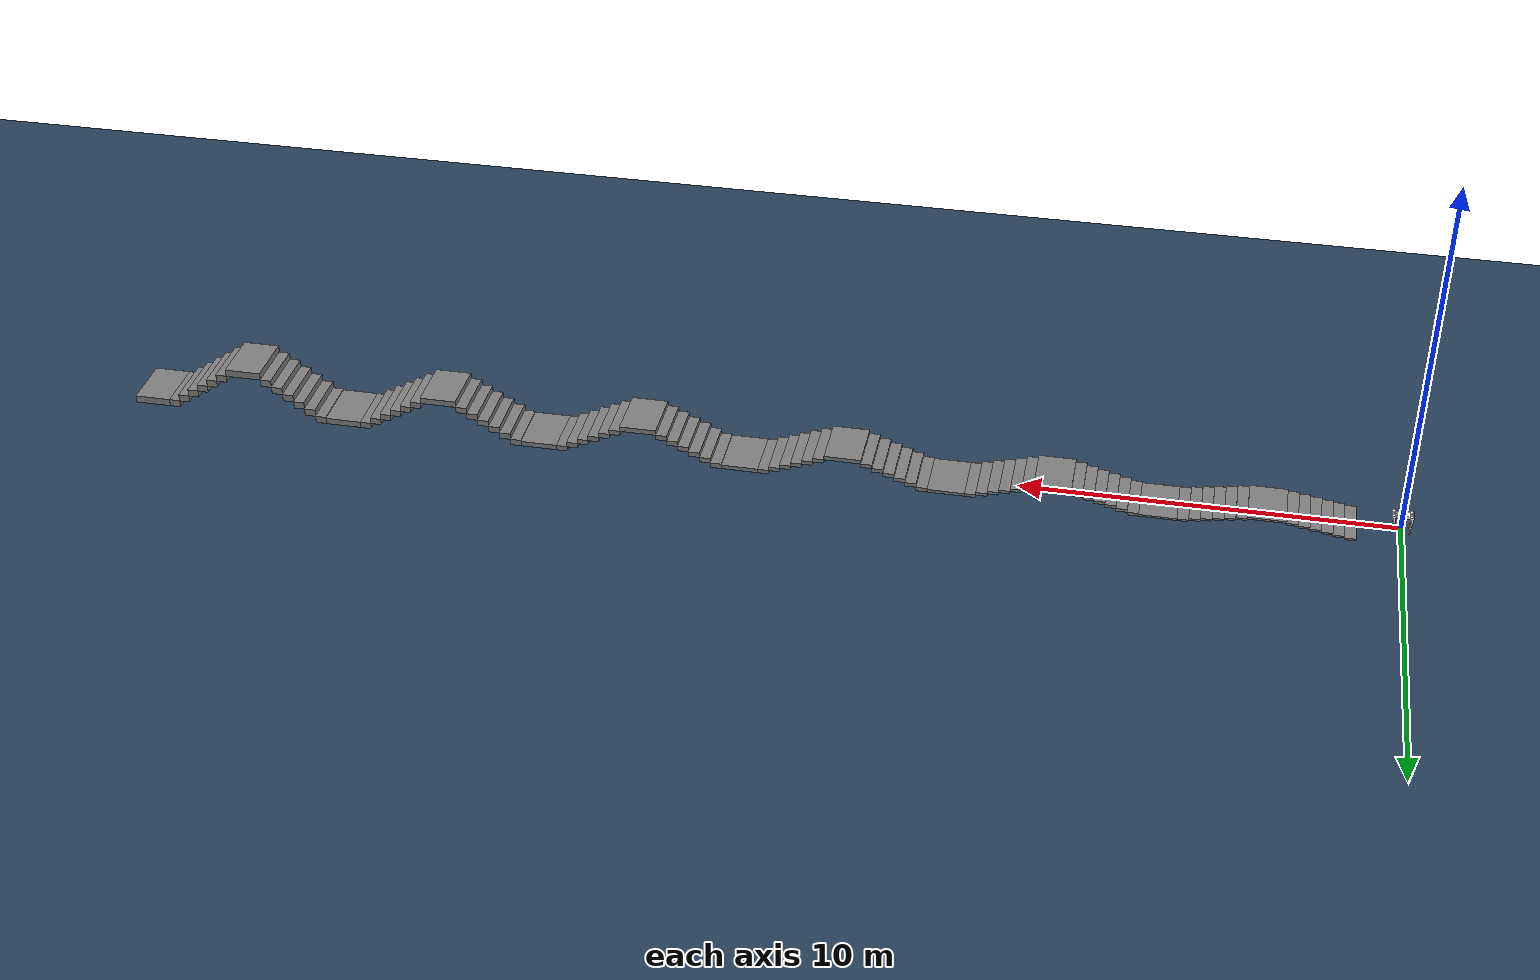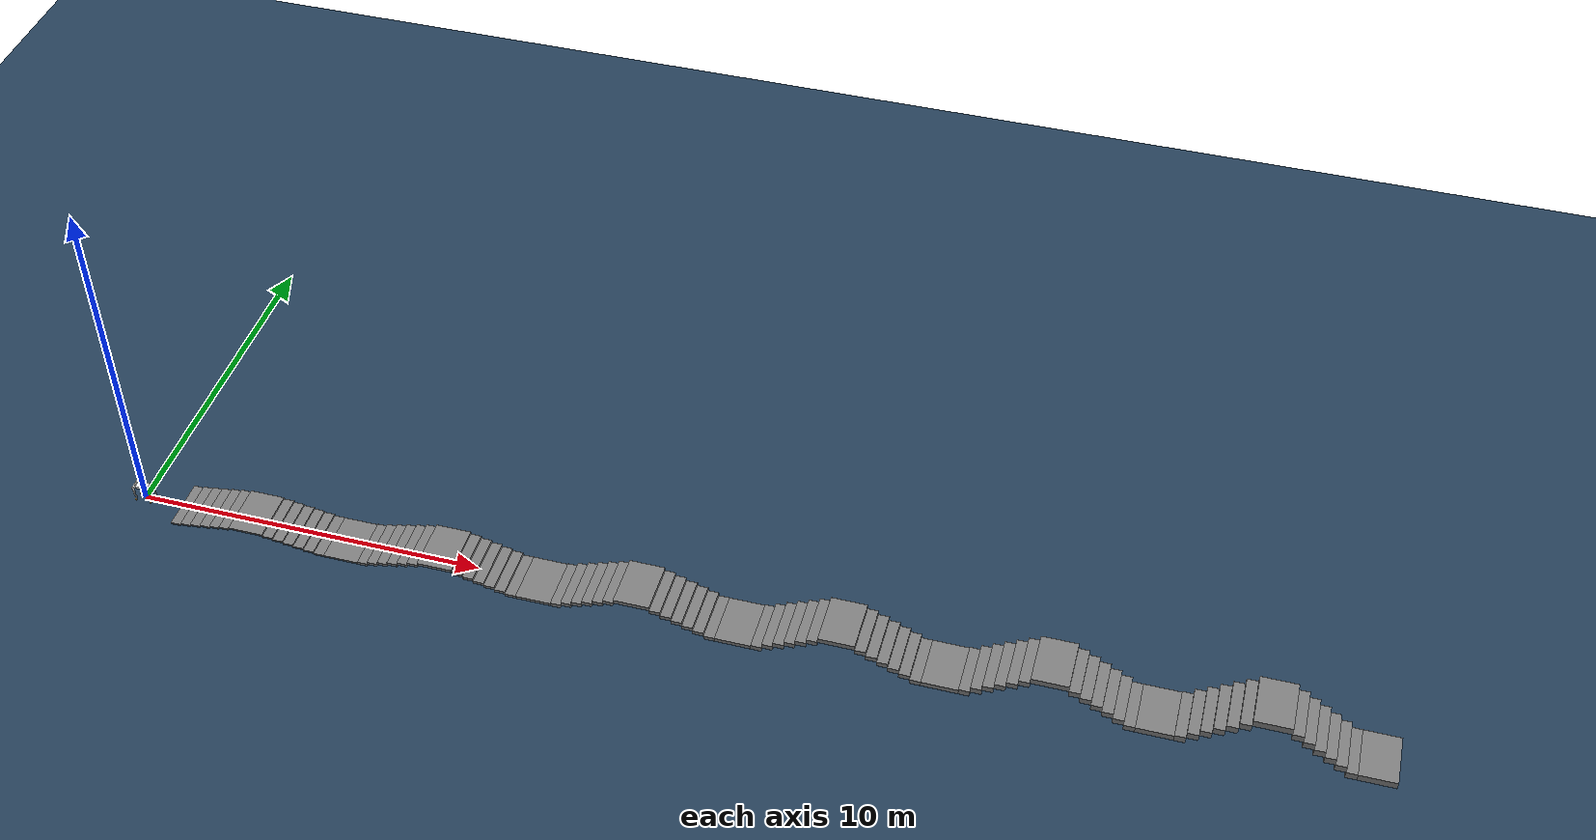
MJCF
<mujoco model="qxhzz scene">
  <include file="qianxihouzhouzu.xml"/>

  <statistic center="0 0 0.1" extent="0.8" />

  <default>
    <geom friction="2.0 0.05 0.001" />
  </default>
  <visual>
    <headlight diffuse="0.6 0.6 0.6" ambient="0.3 0.3 0.3" specular="0 0 0" />
    <rgba haze="0.15 0.25 0.35 1" />
    <global azimuth="-130" elevation="-20" />
  </visual>

  <asset>
    <texture type="skybox" builtin="gradient" rgb1="0.3 0.5 0.7" rgb2="0 0 0" width="512" height="3072" />
    <texture type="2d" name="groundplane" builtin="checker" mark="edge" rgb1="0.2 0.3 0.4" rgb2="0.1 0.2 0.3" markrgb="0.8 0.8 0.8" width="300" height="300" />
    <material name="groundplane" texture="groundplane" texuniform="true" texrepeat="5 5" reflectance="0.2" />
  </asset>

  <worldbody>
    <light pos="0 0 1.5" dir="0 0 -1" directional="true" />
    <geom name="floor" size="0 0 0.05" type="plane" material="groundplane" />

    <geom pos="1.3 0.0 0.025" type="box" size="0.15 0.75 0.025" quat="1.0 0.0 0.0 0.0" />
    <geom pos="1.6 0.0 0.07500000000000001" type="box" size="0.15 0.75 0.025" quat="1.0 0.0 0.0 0.0" />
    <geom pos="1.9 0.0 0.125" type="box" size="0.15 0.75 0.025" quat="1.0 0.0 0.0 0.0" />
    <geom pos="2.2 0.0 0.17500000000000002" type="box" size="0.15 0.75 0.025" quat="1.0 0.0 0.0 0.0" />
    <geom pos="2.5 0.0 0.225" type="box" size="0.15 0.75 0.025" quat="1.0 0.0 0.0 0.0" />
    <geom pos="2.8 0.0 0.275" type="box" size="0.15 0.75 0.025" quat="1.0 0.0 0.0 0.0" />
    <geom pos="3.4499999999999997 0.0 0.32500000000000007" type="box" size="0.5 0.75 0.025" quat="1.0 0.0 0.0 0.0" />
    <geom pos="4.1 0.0 0.275" type="box" size="0.15 0.75 0.025" quat="1.0 0.0 0.0 0.0" />
    <geom pos="4.3999999999999995 0.0 0.22500000000000003" type="box" size="0.15 0.75 0.025" quat="1.0 0.0 0.0 0.0" />
    <geom pos="4.699999999999999 0.0 0.17500000000000002" type="box" size="0.15 0.75 0.025" quat="1.0 0.0 0.0 0.0" />
    <geom pos="5.0 0.0 0.125" type="box" size="0.15 0.75 0.025" quat="1.0 0.0 0.0 0.0" />
    <geom pos="5.3 0.0 0.07500000000000001" type="box" size="0.15 0.75 0.025" quat="1.0 0.0 0.0 0.0" />
    <geom pos="5.6 0.0 0.025000000000000022" type="box" size="0.15 0.75 0.025" quat="1.0 0.0 0.0 0.0" />
    <geom pos="6.25 0.0 0.025" type="box" size="0.5 0.75 0.025" quat="1.0 0.0 0.0 0.0" />
    <geom pos="6.898999999999999 0.0 0.04" type="box" size="0.15 0.75 0.04" quat="1.0 0.0 0.0 0.0" />
    <geom pos="7.198999999999999 0.0 0.12" type="box" size="0.15 0.75 0.04" quat="1.0 0.0 0.0 0.0" />
    <geom pos="7.498999999999999 0.0 0.2" type="box" size="0.15 0.75 0.04" quat="1.0 0.0 0.0 0.0" />
    <geom pos="7.7989999999999995 0.0 0.28" type="box" size="0.15 0.75 0.04" quat="1.0 0.0 0.0 0.0" />
    <geom pos="8.099 0.0 0.36" type="box" size="0.15 0.75 0.04" quat="1.0 0.0 0.0 0.0" />
    <geom pos="8.399 0.0 0.44" type="box" size="0.15 0.75 0.04" quat="1.0 0.0 0.0 0.0" />
    <geom pos="9.049 0.0 0.52" type="box" size="0.5 0.75 0.04" quat="1.0 0.0 0.0 0.0" />
    <geom pos="9.698999999999998 0.0 0.44" type="box" size="0.15 0.75 0.04" quat="1.0 0.0 0.0 0.0" />
    <geom pos="9.998999999999999 0.0 0.36" type="box" size="0.15 0.75 0.04" quat="1.0 0.0 0.0 0.0" />
    <geom pos="10.299 0.0 0.28" type="box" size="0.15 0.75 0.04" quat="1.0 0.0 0.0 0.0" />
    <geom pos="10.598999999999998 0.0 0.2" type="box" size="0.15 0.75 0.04" quat="1.0 0.0 0.0 0.0" />
    <geom pos="10.899 0.0 0.12" type="box" size="0.15 0.75 0.04" quat="1.0 0.0 0.0 0.0" />
    <geom pos="11.198999999999998 0.0 0.03999999999999998" type="box" size="0.15 0.75 0.04" quat="1.0 0.0 0.0 0.0" />
    <geom pos="11.849 0.0 0.04" type="box" size="0.5 0.75 0.04" quat="1.0 0.0 0.0 0.0" />
    <geom pos="12.498 0.0 0.055" type="box" size="0.15 0.75 0.055" quat="1.0 0.0 0.0 0.0" />
    <geom pos="12.797999999999998 0.0 0.165" type="box" size="0.15 0.75 0.055" quat="1.0 0.0 0.0 0.0" />
    <geom pos="13.097999999999999 0.0 0.275" type="box" size="0.15 0.75 0.055" quat="1.0 0.0 0.0 0.0" />
    <geom pos="13.397999999999998 0.0 0.385" type="box" size="0.15 0.75 0.055" quat="1.0 0.0 0.0 0.0" />
    <geom pos="13.697999999999999 0.0 0.495" type="box" size="0.15 0.75 0.055" quat="1.0 0.0 0.0 0.0" />
    <geom pos="13.997999999999998 0.0 0.605" type="box" size="0.15 0.75 0.055" quat="1.0 0.0 0.0 0.0" />
    <geom pos="14.647999999999998 0.0 0.7150000000000001" type="box" size="0.5 0.75 0.055" quat="1.0 0.0 0.0 0.0" />
    <geom pos="15.297999999999998 0.0 0.605" type="box" size="0.15 0.75 0.055" quat="1.0 0.0 0.0 0.0" />
    <geom pos="15.597999999999999 0.0 0.495" type="box" size="0.15 0.75 0.055" quat="1.0 0.0 0.0 0.0" />
    <geom pos="15.897999999999998 0.0 0.385" type="box" size="0.15 0.75 0.055" quat="1.0 0.0 0.0 0.0" />
    <geom pos="16.197999999999997 0.0 0.27499999999999997" type="box" size="0.15 0.75 0.055" quat="1.0 0.0 0.0 0.0" />
    <geom pos="16.497999999999998 0.0 0.16499999999999998" type="box" size="0.15 0.75 0.055" quat="1.0 0.0 0.0 0.0" />
    <geom pos="16.798 0.0 0.05499999999999994" type="box" size="0.15 0.75 0.055" quat="1.0 0.0 0.0 0.0" />
    <geom pos="17.448 0.0 0.055" type="box" size="0.5 0.75 0.055" quat="1.0 0.0 0.0 0.0" />
    <geom pos="18.096999999999998 0.0 0.07" type="box" size="0.15 0.75 0.07" quat="1.0 0.0 0.0 0.0" />
    <geom pos="18.397 0.0 0.21000000000000002" type="box" size="0.15 0.75 0.07" quat="1.0 0.0 0.0 0.0" />
    <geom pos="18.696999999999996 0.0 0.35000000000000003" type="box" size="0.15 0.75 0.07" quat="1.0 0.0 0.0 0.0" />
    <geom pos="18.996999999999996 0.0 0.49000000000000005" type="box" size="0.15 0.75 0.07" quat="1.0 0.0 0.0 0.0" />
    <geom pos="19.296999999999997 0.0 0.6300000000000001" type="box" size="0.15 0.75 0.07" quat="1.0 0.0 0.0 0.0" />
    <geom pos="19.596999999999998 0.0 0.77" type="box" size="0.15 0.75 0.07" quat="1.0 0.0 0.0 0.0" />
    <geom pos="20.246999999999996 0.0 0.9100000000000001" type="box" size="0.5 0.75 0.07" quat="1.0 0.0 0.0 0.0" />
    <geom pos="20.897 0.0 0.77" type="box" size="0.15 0.75 0.07" quat="1.0 0.0 0.0 0.0" />
    <geom pos="21.196999999999996 0.0 0.63" type="box" size="0.15 0.75 0.07" quat="1.0 0.0 0.0 0.0" />
    <geom pos="21.496999999999996 0.0 0.49" type="box" size="0.15 0.75 0.07" quat="1.0 0.0 0.0 0.0" />
    <geom pos="21.796999999999997 0.0 0.35" type="box" size="0.15 0.75 0.07" quat="1.0 0.0 0.0 0.0" />
    <geom pos="22.096999999999998 0.0 0.20999999999999996" type="box" size="0.15 0.75 0.07" quat="1.0 0.0 0.0 0.0" />
    <geom pos="22.397 0.0 0.06999999999999995" type="box" size="0.15 0.75 0.07" quat="1.0 0.0 0.0 0.0" />
    <geom pos="23.046999999999997 0.0 0.07" type="box" size="0.5 0.75 0.07" quat="1.0 0.0 0.0 0.0" />
    <geom pos="23.695999999999998 0.0 0.085" type="box" size="0.15 0.75 0.085" quat="1.0 0.0 0.0 0.0" />
    <geom pos="23.996 0.0 0.255" type="box" size="0.15 0.75 0.085" quat="1.0 0.0 0.0 0.0" />
    <geom pos="24.295999999999996 0.0 0.42500000000000004" type="box" size="0.15 0.75 0.085" quat="1.0 0.0 0.0 0.0" />
    <geom pos="24.595999999999997 0.0 0.5950000000000001" type="box" size="0.15 0.75 0.085" quat="1.0 0.0 0.0 0.0" />
    <geom pos="24.895999999999997 0.0 0.765" type="box" size="0.15 0.75 0.085" quat="1.0 0.0 0.0 0.0" />
    <geom pos="25.195999999999998 0.0 0.935" type="box" size="0.15 0.75 0.085" quat="1.0 0.0 0.0 0.0" />
    <geom pos="25.845999999999997 0.0 1.105" type="box" size="0.5 0.75 0.085" quat="1.0 0.0 0.0 0.0" />
    <geom pos="26.495999999999995 0.0 0.935" type="box" size="0.15 0.75 0.085" quat="1.0 0.0 0.0 0.0" />
    <geom pos="26.795999999999996 0.0 0.765" type="box" size="0.15 0.75 0.085" quat="1.0 0.0 0.0 0.0" />
    <geom pos="27.095999999999997 0.0 0.595" type="box" size="0.15 0.75 0.085" quat="1.0 0.0 0.0 0.0" />
    <geom pos="27.395999999999997 0.0 0.42500000000000004" type="box" size="0.15 0.75 0.085" quat="1.0 0.0 0.0 0.0" />
    <geom pos="27.695999999999998 0.0 0.255" type="box" size="0.15 0.75 0.085" quat="1.0 0.0 0.0 0.0" />
    <geom pos="27.995999999999995 0.0 0.08499999999999996" type="box" size="0.15 0.75 0.085" quat="1.0 0.0 0.0 0.0" />
    <geom pos="28.645999999999997 0.0 0.085" type="box" size="0.5 0.75 0.085" quat="1.0 0.0 0.0 0.0" />
    <geom pos="29.294999999999998 0.0 0.1" type="box" size="0.15 0.75 0.1" quat="1.0 0.0 0.0 0.0" />
    <geom pos="29.595 0.0 0.30000000000000004" type="box" size="0.15 0.75 0.1" quat="1.0 0.0 0.0 0.0" />
    <geom pos="29.894999999999996 0.0 0.5" type="box" size="0.15 0.75 0.1" quat="1.0 0.0 0.0 0.0" />
    <geom pos="30.194999999999997 0.0 0.7000000000000001" type="box" size="0.15 0.75 0.1" quat="1.0 0.0 0.0 0.0" />
    <geom pos="30.494999999999997 0.0 0.9" type="box" size="0.15 0.75 0.1" quat="1.0 0.0 0.0 0.0" />
    <geom pos="30.794999999999998 0.0 1.1" type="box" size="0.15 0.75 0.1" quat="1.0 0.0 0.0 0.0" />
    <geom pos="31.444999999999997 0.0 1.3000000000000003" type="box" size="0.5 0.75 0.1" quat="1.0 0.0 0.0 0.0" />
    <geom pos="32.095 0.0 1.1" type="box" size="0.15 0.75 0.1" quat="1.0 0.0 0.0 0.0" />
    <geom pos="32.394999999999996 0.0 0.9000000000000001" type="box" size="0.15 0.75 0.1" quat="1.0 0.0 0.0 0.0" />
    <geom pos="32.695 0.0 0.7000000000000001" type="box" size="0.15 0.75 0.1" quat="1.0 0.0 0.0 0.0" />
    <geom pos="32.995 0.0 0.5" type="box" size="0.15 0.75 0.1" quat="1.0 0.0 0.0 0.0" />
    <geom pos="33.294999999999995 0.0 0.30000000000000004" type="box" size="0.15 0.75 0.1" quat="1.0 0.0 0.0 0.0" />
    <geom pos="33.595 0.0 0.10000000000000009" type="box" size="0.15 0.75 0.1" quat="1.0 0.0 0.0 0.0" />
    <geom pos="34.245 0.0 0.1" type="box" size="0.5 0.75 0.1" quat="1.0 0.0 0.0 0.0" />
  </worldbody>
</mujoco>

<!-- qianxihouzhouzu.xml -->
<mujoco model="QXHZZ_description">

  <!-- 编译器设置，路径直接兼容你之前的URDF对应的网格目录 -->
  <compiler angle="radian" meshdir="../meshes/"/>
  <option gravity="0 0 -9.81"/>

  <!-- 默认属性，参考 Go2 的设定，给予电机转子惯量、阻尼及摩擦 -->
  <default>
    <joint damping="0.02" armature="0.01" frictionloss="0.01"/>

    <!-- 视觉组：不参与物理碰撞 -->
    <default class="visual">
        <geom type="mesh" contype="0" conaffinity="0" group="2"/>
    </default>

    <!-- 碰撞组：利用网格的凸包进行物理碰撞测试 -->
    <!-- 关键修复：加入 contype="1" conaffinity="0" 禁用机器人自碰撞，但保留与地面的碰撞 -->
    <default class="collision">
        <geom type="mesh" group="3" contype="1" conaffinity="0"/>
    </default>
  </default>

  <!-- 导入网格与材质 -->
  <asset>
    <material name="white" rgba="1 1 1 1" />
    <material name="gray" rgba="0.77647 0.75686 0.73725 1" />
    <material name="orange" rgba="1 0.65 0 1" />
    <material name="red" rgba="1 0 0 1" />

    <mesh file="base_link.STL" />
    <mesh file="shenzi.STL" />
    <mesh file="yq1.STL" />
    <mesh file="zh2.STL" />
    <mesh file="zh3.STL" />
    <mesh file="zq1.STL" />
    <mesh file="yh2.STL" />
    <mesh file="yh3.STL" />
    <mesh file="zh1.STL" />
    <mesh file="yh1.STL" />
  </asset>

  <worldbody>
    <!-- 地面与光照 -->
    <light pos="0 0 1.5" dir="0 0 -1" directional="true"/>

    <!-- 躯干，初始高度设为 0.45 避免陷入地面 -->
    <body name="trunk" pos="0 0 0.45">
      <freejoint name="root"/>
      <inertial pos="0 0 0" mass="5.36" fullinertia="0.055862 0.096172757 0.111591548 0 0 0" />

      <!-- IMU 虚拟连杆与质量 -->
      <body name="imu_link" pos="0 0 0">
          <inertial pos="0 0 0" mass="0.001" fullinertia="0.0001 0.0001 0.0001 0 0 0" />
          <geom type="box" size="0.0005 0.0005 0.0005" material="red" class="visual" />
      </body>

      <!-- Base 与 Trunk 身体网格 -->
      <geom mesh="base_link" material="gray" class="visual" />
      <geom mesh="base_link" class="collision" />
      <geom mesh="shenzi" material="white" class="visual" />
      <geom mesh="shenzi" class="collision" />

      <!-- ================= 前左腿 (FL) ================= -->
      <body name="FL_hip" pos="0.22599 0.05 0">
        <inertial pos="-0.040294 -0.0010631 6.4131E-06" mass="0.80054" fullinertia="0.000567387 0.000893106 0.000630935 0.000004141 0 0"/>
        <joint name="FL_hip_joint" pos="0 0 0" axis="1 0 0" range="-1.570796 1.570796" actuatorfrcrange="-48 48"/>
        <geom mesh="yq1" material="white" class="visual" />
        <geom mesh="yq1" class="collision" />

        <body name="FL_thigh" pos="0 0.088241 0">
          <inertial pos="0.0030535 -0.015391 -0.04077" mass="1.22" fullinertia="0.008707219 0.008424086 0.001382252 0 0.000487508 0"/>
          <joint name="FL_thigh_joint" pos="0 0 0" axis="0 1 0" range="-1.570796 3.141593" actuatorfrcrange="-48 48"/>
          <geom mesh="zh2" material="white" class="visual" />
          <geom mesh="zh2" class="collision" />

          <body name="FL_calf" pos="0 0 -0.22023">
            <inertial pos="-0.0088301 -1.0588E-06 -0.12441" mass="0.53021" fullinertia="0.004322324 0.004363782 0.000070443 -0.000000001 -0.000254221 -0.000000004"/>
            <joint name="FL_calf_joint" pos="0 0 0" axis="0 1 0" range="-2.705260 -0.523599" actuatorfrcrange="-48 48"/>
            <geom mesh="zh3" material="white" class="visual" />
            <geom mesh="zh3" class="collision" />

            <!-- 足端 Fixed Joint 省略，直接嵌入子实体 -->
            <body name="FL_foot" pos="0 0 -0.229">
              <inertial pos="0 0 0" mass="0.06" fullinertia="0.0000096 0.0000096 0.0000096 0 0 0"/>
              <geom type="sphere" size="0.03" material="orange" class="visual" />
              <!-- 脚尖我们默认赋予与地面碰撞能力 -->
              <geom type="sphere" size="0.03" condim="4" friction="3 0.2 0.2" solref="0.02 1"/>
            </body>
          </body>
        </body>
      </body>

      <!-- ================= 前右腿 (FR) ================= -->
      <body name="FR_hip" pos="0.22599 -0.05 0">
        <inertial pos="-0.040294 0.0010631 6.4131E-06" mass="0.80054" fullinertia="0.000567387 0.000893106 0.000630935 0.000004141 0 0"/>
        <joint name="FR_hip_joint" pos="0 0 0" axis="1 0 0" range="-1.570796 1.570796" actuatorfrcrange="-48 48"/>
        <geom mesh="zq1" material="white" class="visual" />
        <geom mesh="zq1" class="collision" />

        <body name="FR_thigh" pos="0 -0.088241 0">
          <inertial pos="0.0030535 0.015391 -0.04077" mass="1.22" fullinertia="0.008707219 0.008424086 0.001382252 0 0.000487508 0"/>
          <joint name="FR_thigh_joint" pos="0 0 0" axis="0 1 0" range="-1.570796 3.141593" actuatorfrcrange="-48 48"/>
          <geom mesh="yh2" material="white" class="visual" />
          <geom mesh="yh2" class="collision" />

          <body name="FR_calf" pos="0 0 -0.22023">
            <inertial pos="-0.0088301 1.0703E-06 -0.12441" mass="0.53021" fullinertia="0.004322324 0.004363782 0.000070443 -0.000000001 -0.000254221 -0.000000004"/>
            <joint name="FR_calf_joint" pos="0 0 0" axis="0 1 0" range="-2.705260 -0.523599" actuatorfrcrange="-48 48"/>
            <geom mesh="yh3" material="white" class="visual" />
            <geom mesh="yh3" class="collision" />

            <body name="FR_foot" pos="0 0 -0.229">
              <inertial pos="0 0 0" mass="0.06" fullinertia="0.0000096 0.0000096 0.0000096 0 0 0"/>
              <geom type="sphere" size="0.03" material="orange" class="visual" />
              <geom type="sphere" size="0.03" condim="4" friction="3 0.2 0.2" solref="0.02 1"/>
            </body>
          </body>
        </body>
      </body>

      <!-- ================= 后左腿 (RL) ================= -->
      <body name="RL_hip" pos="-0.22599 0.05 0">
        <inertial pos="0.040294 -0.0010631 6.4131E-06" mass="0.80054" fullinertia="0.000567387 0.000893106 0.000630935 0.000004141 0 0"/>
        <joint name="RL_hip_joint" pos="0 0 0" axis="1 0 0" range="-1.570796 1.570796" actuatorfrcrange="-48 48"/>
        <geom mesh="zh1" material="white" class="visual" />
        <geom mesh="zh1" class="collision" />

        <body name="RL_thigh" pos="0 0.088241 0">
          <inertial pos="-0.0030535 -0.015391 -0.04077" mass="1.22" fullinertia="0.008707219 0.008424086 0.001382252 0 0.000487508 0"/>
          <joint name="RL_thigh_joint" pos="0 0 0" axis="0 1 0" range="-1.570796 3.141593" actuatorfrcrange="-48 48"/>
          <geom mesh="zh2" material="white" class="visual" />
          <geom mesh="zh2" class="collision" />

          <body name="RL_calf" pos="0 0 -0.22023">
            <inertial pos="0.0088301 -1.0703E-06 -0.12441" mass="0.53021" fullinertia="0.004322324 0.004363782 0.000070443 -0.000000001 -0.000254221 -0.000000004"/>
            <joint name="RL_calf_joint" pos="0 0 0" axis="0 1 0" range="-2.705260 -0.523599" actuatorfrcrange="-48 48"/>
            <geom mesh="zh3" material="white" class="visual" />
            <geom mesh="zh3" class="collision" />

            <body name="RL_foot" pos="0 0 -0.229">
              <inertial pos="0 0 0" mass="0.06" fullinertia="0.0000096 0.0000096 0.0000096 0 0 0"/>
              <geom type="sphere" size="0.03" material="orange" class="visual" />
              <geom type="sphere" size="0.03" condim="4" friction="3 0.2 0.2" solref="0.02 1"/>
            </body>
          </body>
        </body>
      </body>

      <!-- ================= 后右腿 (RR) ================= -->
      <body name="RR_hip" pos="-0.22599 -0.05 0">
        <inertial pos="0.040294 0.0010631 6.4131E-06" mass="0.80054" fullinertia="0.000567387 0.000893106 0.000630935 0.000004141 0 0"/>
        <joint name="RR_hip_joint" pos="0 0 0" axis="1 0 0" range="-1.570796 1.570796" actuatorfrcrange="-48 48"/>
        <geom mesh="yh1" material="white" class="visual" />
        <geom mesh="yh1" class="collision" />

        <body name="RR_thigh" pos="0 -0.088241 0">
          <inertial pos="-0.0030535 0.015391 -0.04077" mass="1.22" fullinertia="0.008707219 0.008424086 0.001382252 0 0.000487508 0"/>
          <joint name="RR_thigh_joint" pos="0 0 0" axis="0 1 0" range="-1.570796 3.141593" actuatorfrcrange="-48 48"/>
          <geom mesh="yh2" material="white" class="visual" />
          <geom mesh="yh2" class="collision" />

          <body name="RR_calf" pos="0 0 -0.22023">
            <inertial pos="0.0088301 1.0588E-06 -0.12441" mass="0.53021" fullinertia="0.004322324 0.004363782 0.000070443 -0.000000001 -0.000254221 -0.000000004"/>
            <joint name="RR_calf_joint" pos="0 0 0" axis="0 1 0" range="-2.705260 -0.523599" actuatorfrcrange="-48 48"/>
            <geom mesh="yh3" material="white" class="visual" />
            <geom mesh="yh3" class="collision" />

            <body name="RR_foot" pos="0 0 -0.229">
              <inertial pos="0 0 0" mass="0.06" fullinertia="0.0000096 0.0000096 0.0000096 0 0 0"/>
              <geom type="sphere" size="0.03" material="orange" class="visual" />
              <geom type="sphere" size="0.03" condim="4" friction="3 0.2 0.2" solref="0.02 1"/>
            </body>
          </body>
        </body>
      </body>

    </body>
  </worldbody>

  <!-- 12个驱动电机定义 -->
  <actuator>
    <motor name="FL_hip"   joint="FL_hip_joint" ctrllimited="true" ctrlrange="-48 48"/>
    <motor name="FL_thigh" joint="FL_thigh_joint" ctrllimited="true" ctrlrange="-48 48"/>
    <motor name="FL_calf"  joint="FL_calf_joint" ctrllimited="true" ctrlrange="-48 48"/>
    <motor name="FR_hip"   joint="FR_hip_joint" ctrllimited="true" ctrlrange="-48 48"/>
    <motor name="FR_thigh" joint="FR_thigh_joint" ctrllimited="true" ctrlrange="-48 48"/>
    <motor name="FR_calf"  joint="FR_calf_joint" ctrllimited="true" ctrlrange="-48 48"/>
    <motor name="RL_hip"   joint="RL_hip_joint" ctrllimited="true" ctrlrange="-48 48"/>
    <motor name="RL_thigh" joint="RL_thigh_joint" ctrllimited="true" ctrlrange="-48 48"/>
    <motor name="RL_calf"  joint="RL_calf_joint" ctrllimited="true" ctrlrange="-48 48"/>
    <motor name="RR_hip"   joint="RR_hip_joint" ctrllimited="true" ctrlrange="-48 48"/>
    <motor name="RR_thigh" joint="RR_thigh_joint" ctrllimited="true" ctrlrange="-48 48"/>
    <motor name="RR_calf"  joint="RR_calf_joint" ctrllimited="true" ctrlrange="-48 48"/>
  </actuator>

  <!-- 关键修复：提供初始关键帧，使所有关节都处于合法的角度范围内，避免模拟瞬间爆炸 -->
  <keyframe>
    <!-- 坐标(3)+四元数(4)+四条腿(12个关节): 按照 FL, FR, RL, RR 顺序应用默认关节角 -->
    <key name="stand" qpos="0 0 0.45 1 0 0 0   0.1 0.8 -1.5   -0.1 0.8 -1.5   0.1 1.0 -1.5   -0.1 1.0 -1.5"/>
  </keyframe>

</mujoco>
